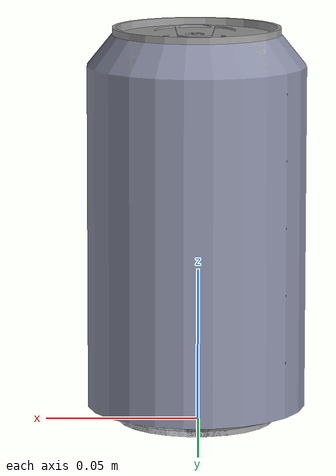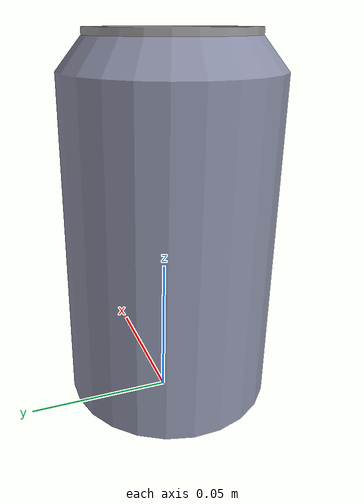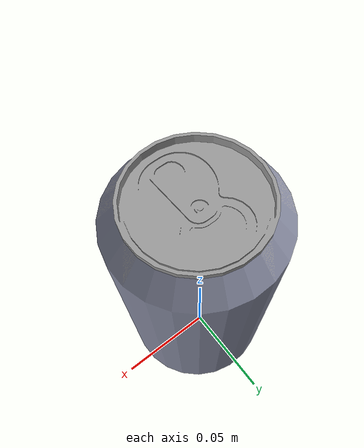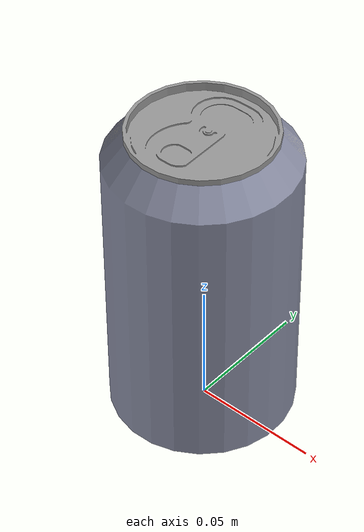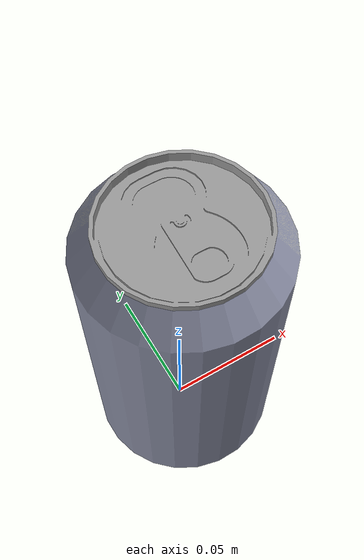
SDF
<?xml version='1.0'?>
<sdf version='1.6'>
  <model name='can_sprite'>
    <link name='link_0'>
         <visual name='visual'>
        <pose frame=''>0 0 0 0 -0 0</pose>
        <geometry>
          <mesh>
            <uri>model://can_sprite/meshes/body.dae</uri>
            <scale>1 1 1</scale>
          </mesh>
        </geometry>
             <material>
       <script>
            <uri>model://can_sprite/materials/scripts</uri>
            <uri>model://can_sprite/materials/textures</uri>
            <name>sprite</name>
          </script>
        </material>
      </visual>
      <collision name='collision'>
        <laser_retro>0</laser_retro>
        <max_contacts>10</max_contacts>
        <pose frame=''>0 0 0 0 -0 0</pose>
        <geometry>
          <mesh>
            <uri>model://can_sprite/meshes/body.dae</uri>
            <scale>1 1 1</scale>
          </mesh>
        </geometry>
       </collision>
    </link>
    <link name='link_1'>
        <visual name='visual'>
        <pose frame=''>0 0 0 0 -0 0</pose>
        <geometry>
          <mesh>
            <uri>model://can_coke/meshes/metal.dae</uri>
            <scale>1 1 1</scale>
          </mesh>
        </geometry>
        <material>
          <lighting>1</lighting>
          <script>
            <uri>file://media/materials/scripts/gazebo.material</uri>
            <name>Gazebo/Grey</name>
          </script>
          <ambient>0.666 0.666 0.666 1</ambient>
          <diffuse>0.666 0.666 0.666 1</diffuse>
          <specular>0.01 0.01 0.01 1</specular>
          <emissive>0 0 0 1</emissive>
        </material>
        <cast_shadows>1</cast_shadows>
        <transparency>0</transparency>
      </visual>
      <collision name='collision'>
        <laser_retro>0</laser_retro>
        <max_contacts>10</max_contacts>
        <pose frame=''>0 0 0 0 -0 0</pose>
        <geometry>
          <mesh>
            <uri>model://can_sprite/meshes/metal.dae</uri>
            <scale>1 1 1</scale>
          </mesh>
        </geometry>
      </collision>
    </link>
    <static>1</static>
    <allow_auto_disable>1</allow_auto_disable>
  </model>
</sdf>
